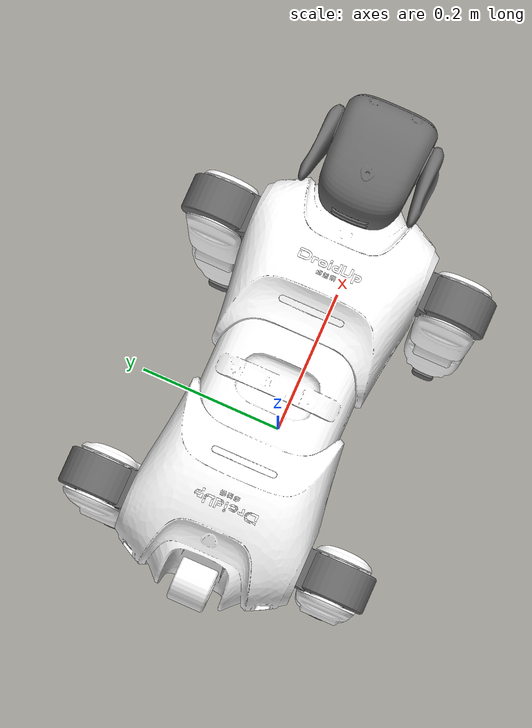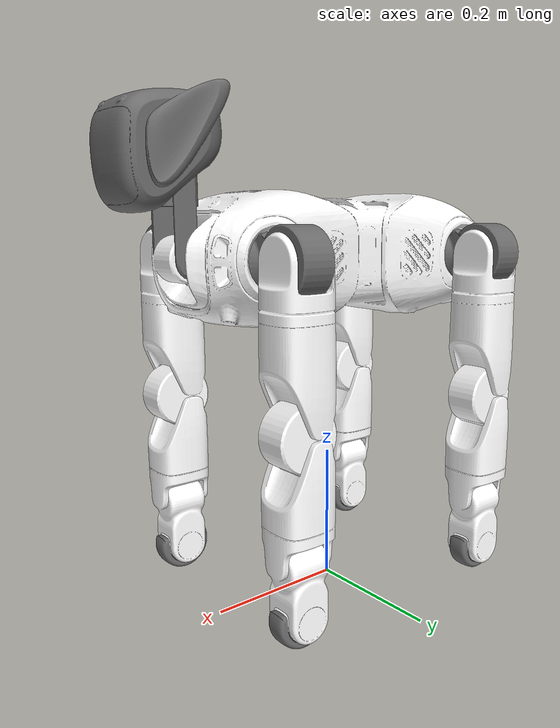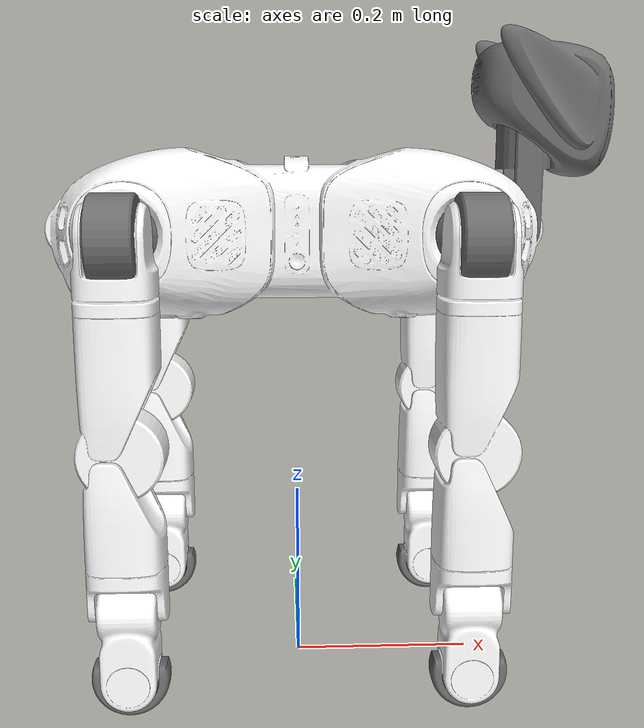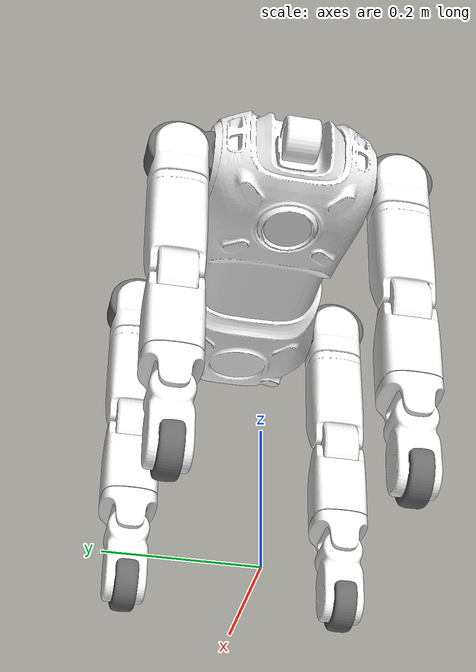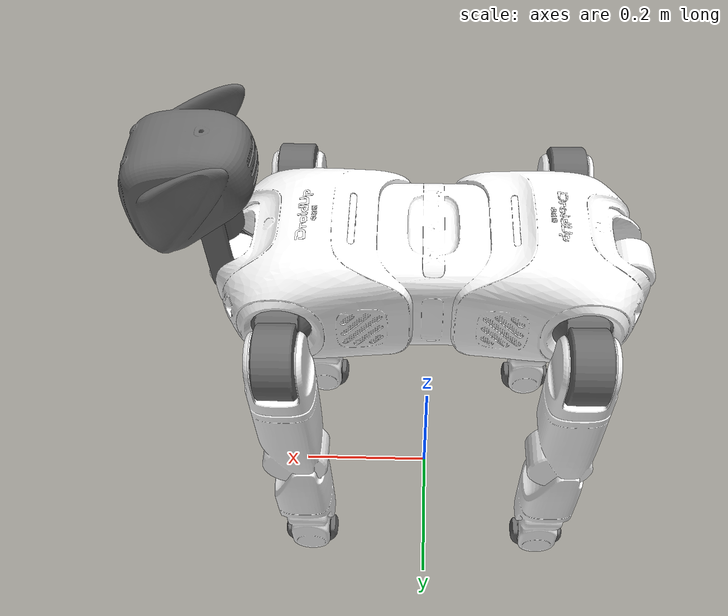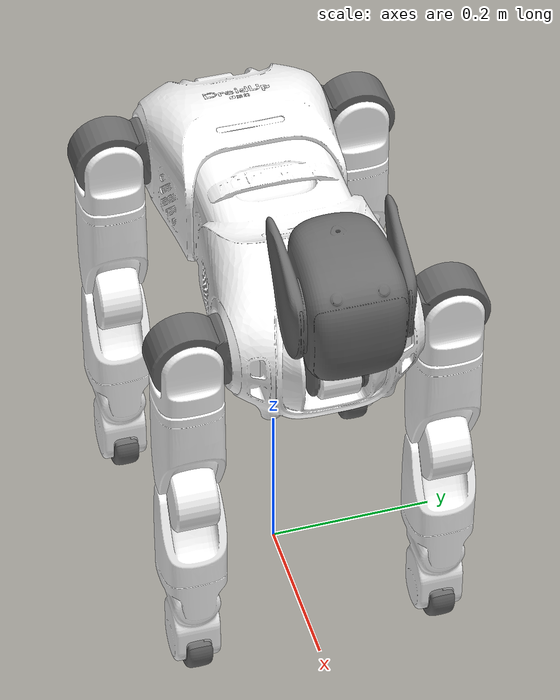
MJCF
<mujoco model="E1dog">
  <compiler angle="radian" meshdir="./meshes/"/>
  <statistic meansize="0.144785" extent="1.23314" center="0.025392 2.0634e-05 -0.245975"/>
  <default>
    <joint damping="0.1" armature="0.01" frictionloss="0.3"/>
  </default>
  <asset>
    <mesh name="base" file="base.STL"/>
    <mesh name="head_pitch_link" file="head_pitch_link.STL"/>
    <mesh name="head_yaw_link" file="head_yaw_link.STL"/>
    <mesh name="FL_thigh_link" file="FL_thigh_link.STL"/>
    <mesh name="FL_hip_link" file="FL_hip_link.STL"/>
    <mesh name="FL_calf_link" file="FL_calf_link.STL"/>
    <mesh name="FL_foot_link" file="FL_foot_link.STL"/>
    <mesh name="FR_thigh_link" file="FR_thigh_link.STL"/>
    <mesh name="FR_hip_link" file="FR_hip_link.STL"/>
    <mesh name="FR_calf_link" file="FR_calf_link.STL"/>
    <mesh name="FR_foot_link" file="FR_foot_link.STL"/>
    <mesh name="RL_thigh_link" file="RL_thigh_link.STL"/>
    <mesh name="RL_hip_link" file="RL_hip_link.STL"/>
    <mesh name="RL_calf_link" file="RL_calf_link.STL"/>
    <mesh name="RL_foot_link" file="RL_foot_link.STL"/>
    <mesh name="RR_thigh_link" file="RR_thigh_link.STL"/>
    <mesh name="RR_hip_link" file="RR_hip_link.STL"/>
    <mesh name="RR_calf_link" file="RR_calf_link.STL"/>
    <mesh name="RR_foot_link" file="RR_foot_link.STL"/>
    <mesh name="logo" file="logo.STL"/>
  </asset>

  <worldbody>
    <body name="base" pos="0 0 0.50">
      <inertial pos="0.0744586 -0.000154873 0.0181699" quat="0.00710517 0.555882 0.0045988 0.831218" mass="7.201" diaginertia="0.144358 0.123676 0.0663614"/>
      <joint name="floating_base_joint" type="free" limited="false" actuatorfrclimited="false"/>
      <geom type="mesh" contype="0" conaffinity="0" group="1" density="0" rgba="1 1 1 1" mesh="base"/>
      <geom type="mesh" rgba="1 1 1 1" mesh="base"/>
      <geom pos="0.24 0 0" type="mesh" contype="0" conaffinity="0" group="1" density="0" rgba="0.41961 0.41961 0.41961 1" mesh="head_pitch_link"/>
      <geom pos="0.25 0 0.12" quat="1 0 0 0" type="mesh" contype="0" conaffinity="0" group="1" density="0" rgba="0.41961 0.41961 0.41961 1" mesh="head_yaw_link"/>
      <geom pos="0.25 0 0.12" quat="1 0 0 0" type="mesh" rgba="0.41961 0.41961 0.41961 1" mesh="head_yaw_link"/>
      <geom type="mesh" contype="0" conaffinity="0" group="1" density="0" rgba="1 1 1 1" mesh="logo"/>
      <geom type="mesh" rgba="1 1 1 1" mesh="logo"/>
      <site name="imu" pos="0 0  0.03"/>
      <body name="FL_thigh_link" pos="0.1755 0.094 0">
        <inertial pos="-1.1428e-08 0.046854 -2.0605e-08" quat="0.707106 0.707108 2.32448e-07 -1.25782e-06" mass="0.8" diaginertia="0.00038465 0.00029061 0.00020833"/>
        <joint name="FL_thigh_joint" pos="0 0 0" axis="0 1 0" range="-1.5708 3.4907" actuatorfrcrange="-23.7 23.7"/>
        <geom type="mesh" contype="0" conaffinity="0" group="1" density="0" rgba="0.41961 0.41961 0.41961 1" mesh="FL_thigh_link"/>
        <body name="FL_hip_link" pos="0 0.055 0">
          <inertial pos="-0.0018929 6.9925e-07 -0.094754" quat="0.993799 3.51702e-05 0.111188 0.000329754" mass="1.5" diaginertia="0.00101738 0.0010114 0.000729143"/>
          <joint name="FL_hip_joint" pos="0 0 0" axis="1 0 0" range="-1.0472 1.0472" actuatorfrcrange="-23.7 23.7"/>
          <geom type="mesh" contype="0" conaffinity="0" group="1" density="0" rgba="1 1 1 1" mesh="FL_hip_link"/>
          <geom type="mesh" rgba="1 1 1 1" mesh="FL_hip_link"/>
          <body name="FL_calf_link" pos="0 0 -0.21">
            <inertial pos="-0.00159994 -7.497e-08 -0.142754" quat="0.706921 -0.00965062 -0.00964736 0.70716" mass="1.4" diaginertia="0.00384879 0.00383328 0.000667016"/>
            <joint name="FL_calf_joint" pos="0 0 0" axis="0 1 0" range="-2.7227 0" actuatorfrcrange="-45.43 45.43"/>
            <geom type="mesh" contype="0" conaffinity="0" group="1" density="0" rgba="1 1 1 1" mesh="FL_calf_link"/>
            <geom type="mesh" rgba="1 1 1 1" mesh="FL_calf_link"/>
            <geom pos="0 0 -0.23844" quat="1 0 0 0" type="mesh" contype="0" conaffinity="0" group="1" density="0" rgba="0.41961 0.41961 0.41961 1" mesh="FL_foot_link"/>
            <geom pos="0 0 -0.23844" quat="1 0 0 0" type="mesh" rgba="0.41961 0.41961 0.41961 1" mesh="FL_foot_link"/>
          </body>
        </body>
      </body>
      <body name="FR_thigh_link" pos="0.1755 -0.094 0">
        <inertial pos="1.1428e-08 -0.046854 -2.0605e-08" quat="0.707108 0.707106 -1.25782e-06 2.32448e-07" mass="0.8" diaginertia="0.00038465 0.00029061 0.00020833"/>
        <joint name="FR_thigh_joint" pos="0 0 0" axis="0 1 0" range="-1.5708 3.4907" actuatorfrcrange="-23.7 23.7"/>
        <geom type="mesh" contype="0" conaffinity="0" group="1" density="0" rgba="0.41961 0.41961 0.41961 1" mesh="FR_thigh_link"/>
        <body name="FR_hip_link" pos="0 -0.055 0">
          <inertial pos="-0.0018929 6.9925e-07 -0.094754" quat="0.993799 3.51711e-05 0.111188 0.000329764" mass="1.5" diaginertia="0.00101738 0.0010114 0.000729143"/>
          <joint name="FR_hip_joint" pos="0 0 0" axis="1 0 0" range="-1.0472 1.0472" actuatorfrcrange="-23.7 23.7"/>
          <geom type="mesh" contype="0" conaffinity="0" group="1" density="0" rgba="1 1 1 1" mesh="FR_hip_link"/>
          <geom type="mesh" rgba="1 1 1 1" mesh="FR_hip_link"/>
          <body name="FR_calf_link" pos="0 0 -0.21">
            <inertial pos="-0.00159994 -7.49186e-08 -0.142754" quat="0.706921 -0.00965062 -0.00964736 0.70716" mass="1.4" diaginertia="0.00384879 0.00383328 0.000667016"/>
            <joint name="FR_calf_joint" pos="0 0 0" axis="0 1 0" range="-2.7227 0" actuatorfrcrange="-45.43 45.43"/>
            <geom type="mesh" contype="0" conaffinity="0" group="1" density="0" rgba="1 1 1 1" mesh="FR_calf_link"/>
            <geom type="mesh" rgba="1 1 1 1" mesh="FR_calf_link"/>
            <geom pos="0 0 -0.23844" quat="1 0 0 0" type="mesh" contype="0" conaffinity="0" group="1" density="0" rgba="0.41961 0.41961 0.41961 1" mesh="FR_foot_link"/>
            <geom pos="0 0 -0.23844" quat="1 0 0 0" type="mesh" rgba="0.41961 0.41961 0.41961 1" mesh="FR_foot_link"/>
          </body>
        </body>
      </body>
      <body name="RL_thigh_link" pos="-0.175 0.095 0">
        <inertial pos="0.00049999 0.045854 -2.0605e-08" quat="0.707106 0.707108 2.32448e-07 -1.25782e-06" mass="0.8" diaginertia="0.00038465 0.00029061 0.00020833"/>
        <joint name="RL_thigh_joint" pos="0 0 0" axis="0 1 0" range="-1.5708 3.4907" actuatorfrcrange="-23.7 23.7"/>
        <geom type="mesh" contype="0" conaffinity="0" group="1" density="0" rgba="0.41961 0.41961 0.41961 1" mesh="RL_thigh_link"/>
        <body name="RL_hip_link" pos="0 0.054 0">
          <inertial pos="-0.0013929 6.9925e-07 -0.094754" quat="0.993799 3.51712e-05 0.111188 0.000329766" mass="1.5" diaginertia="0.00101738 0.0010114 0.000729143"/>
          <joint name="RL_hip_joint" pos="0 0 0" axis="1 0 0" range="-1.0472 1.0472" actuatorfrcrange="-23.7 23.7"/>
          <geom type="mesh" contype="0" conaffinity="0" group="1" density="0" rgba="1 1 1 1" mesh="RL_hip_link"/>
          <geom type="mesh" rgba="1 1 1 1" mesh="RL_hip_link"/>
          <body name="RL_calf_link" pos="0.0005 0 -0.21">
            <inertial pos="-0.00159994 -7.49614e-08 -0.142754" quat="0.706921 -0.00965062 -0.00964736 0.70716" mass="1.4" diaginertia="0.00384879 0.00383328 0.000667016"/>
            <joint name="RL_calf_joint" pos="0 0 0" axis="0 1 0" range="-2.7227 0" actuatorfrcrange="-45.43 45.43"/>
            <geom type="mesh" contype="0" conaffinity="0" group="1" density="0" rgba="1 1 1 1" mesh="RL_calf_link"/>
            <geom type="mesh" rgba="1 1 1 1" mesh="RL_calf_link"/>
            <geom pos="0 0 -0.23844" quat="1 0 0 0" type="mesh" contype="0" conaffinity="0" group="1" density="0" rgba="0.41961 0.41961 0.41961 1" mesh="RL_foot_link"/>
            <geom pos="0 0 -0.23844" quat="1 0 0 0" type="mesh" rgba="0.41961 0.41961 0.41961 1" mesh="RL_foot_link"/>
          </body>
        </body>
      </body>
      <body name="RR_thigh_link" pos="-0.1745 -0.094 0">
        <inertial pos="-1.1428e-08 -0.046854 2.0605e-08" quat="0.707106 0.707108 -2.32448e-07 1.25782e-06" mass="0.8" diaginertia="0.00038465 0.00029061 0.00020833"/>
        <joint name="RR_thigh_joint" pos="0 0 0" axis="0 1 0" range="-1.5708 3.4907" actuatorfrcrange="-23.7 23.7"/>
        <geom type="mesh" contype="0" conaffinity="0" group="1" density="0" rgba="0.41961 0.41961 0.41961 1" mesh="RR_thigh_link"/>
        <body name="RR_hip_link" pos="0 -0.055 0">
          <inertial pos="-0.0018929 6.9931e-07 -0.094754" quat="0.993799 3.51611e-05 0.111188 0.000329651" mass="1.5" diaginertia="0.00101738 0.0010114 0.000729143"/>
          <joint name="RR_hip_joint" pos="0 0 0" axis="1 0 0" range="-1.0472 1.0472" actuatorfrcrange="-23.7 23.7"/>
          <geom type="mesh" contype="0" conaffinity="0" group="1" density="0" rgba="1 1 1 1" mesh="RR_hip_link"/>
          <geom type="mesh" rgba="1 1 1 1" mesh="RR_hip_link"/>
          <body name="RR_calf_link" pos="0 0 -0.21">
            <inertial pos="-0.00159994 -7.49786e-08 -0.142754" quat="0.706921 -0.00965062 -0.00964736 0.70716" mass="1.4" diaginertia="0.00384879 0.00383328 0.000667016"/>
            <joint name="RR_calf_joint" pos="0 0 0" axis="0 1 0" range="-2.7227 0" actuatorfrcrange="-45.43 45.43"/>
            <geom type="mesh" contype="0" conaffinity="0" group="1" density="0" rgba="1 1 1 1" mesh="RR_calf_link"/>
            <geom type="mesh" rgba="1 1 1 1" mesh="RR_calf_link"/>
            <geom pos="0 0 -0.23844" quat="1 0 0 0" type="mesh" contype="0" conaffinity="0" group="1" density="0" rgba="0.41961 0.41961 0.41961 1" mesh="RR_foot_link"/>
            <geom pos="0 0 -0.23844" quat="1 0 0 0" type="mesh" rgba="0.41961 0.41961 0.41961 1" mesh="RR_foot_link"/>
          </body>
        </body>
      </body>
    </body>
  </worldbody>
  <actuator>
    <motor name="FL_thigh_joint"   joint="FL_thigh_joint"   /> <!-- Leg Left -->
    <motor name="FL_hip_joint"     joint="FL_hip_joint"    />
    <motor name="FL_calf_joint"    joint="FL_calf_joint"     />
    <motor name="FR_thigh_joint"   joint="FR_thigh_joint"  />
    <motor name="FR_hip_joint"     joint="FR_hip_joint" />
    <motor name="FR_calf_joint"    joint="FR_calf_joint"  />

    <motor name="RL_thigh_joint"   joint="RL_thigh_joint"   /> <!-- Right Left -->
    <motor name="RL_hip_joint"     joint="RL_hip_joint"    />
    <motor name="RL_calf_joint"    joint="RL_calf_joint"     />
    <motor name="RR_thigh_joint"   joint="RR_thigh_joint"  />
    <motor name="RR_hip_joint"     joint="RR_hip_joint" />
    <motor name="RR_calf_joint"    joint="RR_calf_joint"  />
  </actuator>
  <sensor>
    <!-- 身体的的姿态 -->
    <gyro          name="gyro"    site='imu' noise='0.005' cutoff='34.9'/>
    <accelerometer name="acc"     site='imu' noise='0.005' cutoff='157'/>
    <framequat     name='bq'      objtype='site' noise='0.001' objname='imu'/>
    <framelinvel   name="blv"  objtype='site' objname='imu'/>
  </sensor>
</mujoco>
